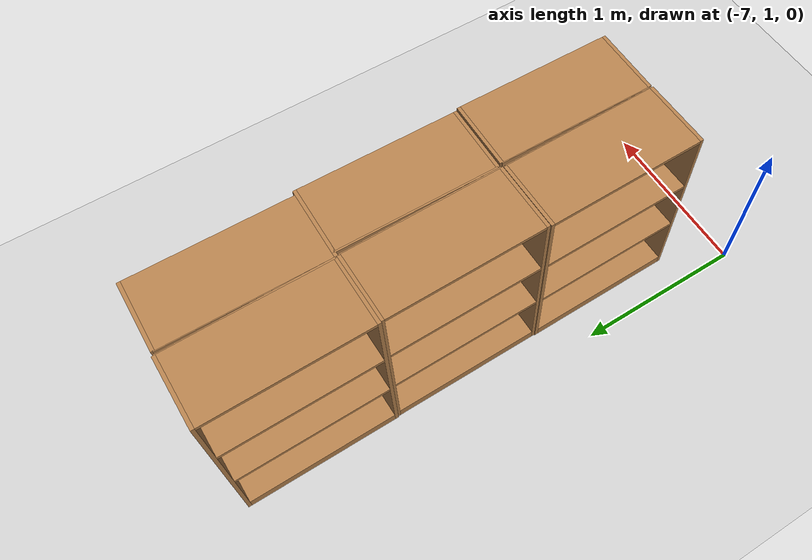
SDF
<sdf version="1.7">
 <world name="default">
  <model name="booookshelf_1">
   <model name="bookshelf">
    <static>1</static>
    <link name="link">
     <inertial><mass>1</mass></inertial>
     <collision name="back">
      <pose>0 0.005 0.6 0 -0 0</pose>
      <geometry><box><size>0.9 0.01 1.2</size></box></geometry>
     </collision>
     <visual name="visual1">
      <pose>0 0.005 0.6 0 -0 0</pose>
      <geometry><box><size>0.9 0.01 1.2</size></box></geometry>
      <material>
       <script><uri>file://media/materials/scripts/gazebo.material</uri><name>Gazebo/Wood</name></script>
      </material>
     </visual>
     <collision name="left_side">
      <pose>0.45 -0.195 0.6 0 -0 0</pose>
      <geometry><box><size>0.02 0.4 1.2</size></box></geometry>
     </collision>
     <visual name="visual2">
      <pose>0.45 -0.195 0.6 0 -0 0</pose>
      <geometry><box><size>0.02 0.4 1.2</size></box></geometry>
      <material>
       <script><uri>file://media/materials/scripts/gazebo.material</uri><name>Gazebo/Wood</name></script>
      </material>
     </visual>
     <collision name="right_side">
      <pose>-0.45 -0.195 0.6 0 -0 0</pose>
      <geometry><box><size>0.02 0.4 1.2</size></box></geometry>
     </collision>
     <visual name="visual3">
      <pose>-0.45 -0.195 0.6 0 -0 0</pose>
      <geometry><box><size>0.02 0.4 1.2</size></box></geometry>
      <material>
       <script><uri>file://media/materials/scripts/gazebo.material</uri><name>Gazebo/Wood</name></script>
      </material>
     </visual>
     <collision name="bottom">
      <pose>0 -0.195 0.03 0 -0 0</pose>
      <geometry><box><size>0.88 0.4 0.06</size></box></geometry>
     </collision>
     <visual name="visual4">
      <pose>0 -0.195 0.03 0 -0 0</pose>
      <geometry><box><size>0.88 0.4 0.06</size></box></geometry>
      <material>
       <script><uri>file://media/materials/scripts/gazebo.material</uri><name>Gazebo/Wood</name></script>
      </material>
     </visual>
     <collision name="top">
      <pose>0 -0.195 1.19 0 -0 0</pose>
      <geometry><box><size>0.88 0.4 0.02</size></box></geometry>
     </collision>
     <visual name="visual5">
      <pose>0 -0.195 1.19 0 -0 0</pose>
      <geometry><box><size>0.88 0.4 0.02</size></box></geometry>
      <material>
       <script><uri>file://media/materials/scripts/gazebo.material</uri><name>Gazebo/Wood</name></script>
      </material>
     </visual>
     <collision name="low_shelf">
      <pose>0 -0.195 0.43 0 -0 0</pose>
      <geometry><box><size>0.88 0.4 0.02</size></box></geometry>
     </collision>
     <visual name="visual6">
      <pose>0 -0.195 0.43 0 -0 0</pose>
      <geometry><box><size>0.88 0.4 0.02</size></box></geometry>
      <material>
       <script><uri>file://media/materials/scripts/gazebo.material</uri><name>Gazebo/Wood</name></script>
      </material>
     </visual>
     <collision name="high_shelf">
      <pose>0 -0.195 0.8 0 -0 0</pose>
      <geometry><box><size>0.88 0.4 0.02</size></box></geometry>
     </collision>
     <visual name="visual7">
      <pose>0 -0.195 0.8 0 -0 0</pose>
      <geometry><box><size>0.88 0.4 0.02</size></box></geometry>
      <material>
       <script><uri>file://media/materials/scripts/gazebo.material</uri><name>Gazebo/Wood</name></script>
      </material>
     </visual>
    </link>
    <pose>-0.009683 0.000159 0 0 0 -1.56493</pose>
   </model>
   <model name="bookshelf_clone">
    <static>1</static>
    <link name="link">
     <inertial><mass>1</mass></inertial>
     <collision name="back">
      <pose>0 0.005 0.6 0 -0 0</pose>
      <geometry><box><size>0.9 0.01 1.2</size></box></geometry>
     </collision>
     <visual name="visual1">
      <pose>0 0.005 0.6 0 -0 0</pose>
      <geometry><box><size>0.9 0.01 1.2</size></box></geometry>
      <material>
       <script><uri>file://media/materials/scripts/gazebo.material</uri><name>Gazebo/Wood</name></script>
      </material>
     </visual>
     <collision name="left_side">
      <pose>0.45 -0.195 0.6 0 -0 0</pose>
      <geometry><box><size>0.02 0.4 1.2</size></box></geometry>
     </collision>
     <visual name="visual2">
      <pose>0.45 -0.195 0.6 0 -0 0</pose>
      <geometry><box><size>0.02 0.4 1.2</size></box></geometry>
      <material>
       <script><uri>file://media/materials/scripts/gazebo.material</uri><name>Gazebo/Wood</name></script>
      </material>
     </visual>
     <collision name="right_side">
      <pose>-0.45 -0.195 0.6 0 -0 0</pose>
      <geometry><box><size>0.02 0.4 1.2</size></box></geometry>
     </collision>
     <visual name="visual3">
      <pose>-0.45 -0.195 0.6 0 -0 0</pose>
      <geometry><box><size>0.02 0.4 1.2</size></box></geometry>
      <material>
       <script><uri>file://media/materials/scripts/gazebo.material</uri><name>Gazebo/Wood</name></script>
      </material>
     </visual>
     <collision name="bottom">
      <pose>0 -0.195 0.03 0 -0 0</pose>
      <geometry><box><size>0.88 0.4 0.06</size></box></geometry>
     </collision>
     <visual name="visual4">
      <pose>0 -0.195 0.03 0 -0 0</pose>
      <geometry><box><size>0.88 0.4 0.06</size></box></geometry>
      <material>
       <script><uri>file://media/materials/scripts/gazebo.material</uri><name>Gazebo/Wood</name></script>
      </material>
     </visual>
     <collision name="top">
      <pose>0 -0.195 1.19 0 -0 0</pose>
      <geometry><box><size>0.88 0.4 0.02</size></box></geometry>
     </collision>
     <visual name="visual5">
      <pose>0 -0.195 1.19 0 -0 0</pose>
      <geometry><box><size>0.88 0.4 0.02</size></box></geometry>
      <material>
       <script><uri>file://media/materials/scripts/gazebo.material</uri><name>Gazebo/Wood</name></script>
      </material>
     </visual>
     <collision name="low_shelf">
      <pose>0 -0.195 0.43 0 -0 0</pose>
      <geometry><box><size>0.88 0.4 0.02</size></box></geometry>
     </collision>
     <visual name="visual6">
      <pose>0 -0.195 0.43 0 -0 0</pose>
      <geometry><box><size>0.88 0.4 0.02</size></box></geometry>
      <material>
       <script><uri>file://media/materials/scripts/gazebo.material</uri><name>Gazebo/Wood</name></script>
      </material>
     </visual>
     <collision name="high_shelf">
      <pose>0 -0.195 0.8 0 -0 0</pose>
      <geometry><box><size>0.88 0.4 0.02</size></box></geometry>
     </collision>
     <visual name="visual7">
      <pose>0 -0.195 0.8 0 -0 0</pose>
      <geometry><box><size>0.88 0.4 0.02</size></box></geometry>
      <material>
       <script><uri>file://media/materials/scripts/gazebo.material</uri><name>Gazebo/Wood</name></script>
      </material>
     </visual>
    </link>
    <pose>-0.008394 -0.921313 0 0 0 -1.56493</pose>
   </model>
   <model name="bookshelf_clone_0">
    <static>1</static>
    <link name="link">
     <inertial><mass>1</mass></inertial>
     <collision name="back">
      <pose>0 0.005 0.6 0 -0 0</pose>
      <geometry><box><size>0.9 0.01 1.2</size></box></geometry>
     </collision>
     <visual name="visual1">
      <pose>0 0.005 0.6 0 -0 0</pose>
      <geometry><box><size>0.9 0.01 1.2</size></box></geometry>
      <material>
       <script><uri>file://media/materials/scripts/gazebo.material</uri><name>Gazebo/Wood</name></script>
      </material>
     </visual>
     <collision name="left_side">
      <pose>0.45 -0.195 0.6 0 -0 0</pose>
      <geometry><box><size>0.02 0.4 1.2</size></box></geometry>
     </collision>
     <visual name="visual2">
      <pose>0.45 -0.195 0.6 0 -0 0</pose>
      <geometry><box><size>0.02 0.4 1.2</size></box></geometry>
      <material>
       <script><uri>file://media/materials/scripts/gazebo.material</uri><name>Gazebo/Wood</name></script>
      </material>
     </visual>
     <collision name="right_side">
      <pose>-0.45 -0.195 0.6 0 -0 0</pose>
      <geometry><box><size>0.02 0.4 1.2</size></box></geometry>
     </collision>
     <visual name="visual3">
      <pose>-0.45 -0.195 0.6 0 -0 0</pose>
      <geometry><box><size>0.02 0.4 1.2</size></box></geometry>
      <material>
       <script><uri>file://media/materials/scripts/gazebo.material</uri><name>Gazebo/Wood</name></script>
      </material>
     </visual>
     <collision name="bottom">
      <pose>0 -0.195 0.03 0 -0 0</pose>
      <geometry><box><size>0.88 0.4 0.06</size></box></geometry>
     </collision>
     <visual name="visual4">
      <pose>0 -0.195 0.03 0 -0 0</pose>
      <geometry><box><size>0.88 0.4 0.06</size></box></geometry>
      <material>
       <script><uri>file://media/materials/scripts/gazebo.material</uri><name>Gazebo/Wood</name></script>
      </material>
     </visual>
     <collision name="top">
      <pose>0 -0.195 1.19 0 -0 0</pose>
      <geometry><box><size>0.88 0.4 0.02</size></box></geometry>
     </collision>
     <visual name="visual5">
      <pose>0 -0.195 1.19 0 -0 0</pose>
      <geometry><box><size>0.88 0.4 0.02</size></box></geometry>
      <material>
       <script><uri>file://media/materials/scripts/gazebo.material</uri><name>Gazebo/Wood</name></script>
      </material>
     </visual>
     <collision name="low_shelf">
      <pose>0 -0.195 0.43 0 -0 0</pose>
      <geometry><box><size>0.88 0.4 0.02</size></box></geometry>
     </collision>
     <visual name="visual6">
      <pose>0 -0.195 0.43 0 -0 0</pose>
      <geometry><box><size>0.88 0.4 0.02</size></box></geometry>
      <material>
       <script><uri>file://media/materials/scripts/gazebo.material</uri><name>Gazebo/Wood</name></script>
      </material>
     </visual>
     <collision name="high_shelf">
      <pose>0 -0.195 0.8 0 -0 0</pose>
      <geometry><box><size>0.88 0.4 0.02</size></box></geometry>
     </collision>
     <visual name="visual7">
      <pose>0 -0.195 0.8 0 -0 0</pose>
      <geometry><box><size>0.88 0.4 0.02</size></box></geometry>
      <material>
       <script><uri>file://media/materials/scripts/gazebo.material</uri><name>Gazebo/Wood</name></script>
      </material>
     </visual>
    </link>
    <pose>-0.020188 0.9173 0 0 0 -1.56493</pose>
   </model>
   <model name="bookshelf_clone_1">
    <static>1</static>
    <link name="link">
     <inertial><mass>1</mass></inertial>
     <collision name="back">
      <pose>0 0.005 0.6 0 -0 0</pose>
      <geometry><box><size>0.9 0.01 1.2</size></box></geometry>
     </collision>
     <visual name="visual1">
      <pose>0 0.005 0.6 0 -0 0</pose>
      <geometry><box><size>0.9 0.01 1.2</size></box></geometry>
      <material>
       <script><uri>file://media/materials/scripts/gazebo.material</uri><name>Gazebo/Wood</name></script>
      </material>
     </visual>
     <collision name="left_side">
      <pose>0.45 -0.195 0.6 0 -0 0</pose>
      <geometry><box><size>0.02 0.4 1.2</size></box></geometry>
     </collision>
     <visual name="visual2">
      <pose>0.45 -0.195 0.6 0 -0 0</pose>
      <geometry><box><size>0.02 0.4 1.2</size></box></geometry>
      <material>
       <script><uri>file://media/materials/scripts/gazebo.material</uri><name>Gazebo/Wood</name></script>
      </material>
     </visual>
     <collision name="right_side">
      <pose>-0.45 -0.195 0.6 0 -0 0</pose>
      <geometry><box><size>0.02 0.4 1.2</size></box></geometry>
     </collision>
     <visual name="visual3">
      <pose>-0.45 -0.195 0.6 0 -0 0</pose>
      <geometry><box><size>0.02 0.4 1.2</size></box></geometry>
      <material>
       <script><uri>file://media/materials/scripts/gazebo.material</uri><name>Gazebo/Wood</name></script>
      </material>
     </visual>
     <collision name="bottom">
      <pose>0 -0.195 0.03 0 -0 0</pose>
      <geometry><box><size>0.88 0.4 0.06</size></box></geometry>
     </collision>
     <visual name="visual4">
      <pose>0 -0.195 0.03 0 -0 0</pose>
      <geometry><box><size>0.88 0.4 0.06</size></box></geometry>
      <material>
       <script><uri>file://media/materials/scripts/gazebo.material</uri><name>Gazebo/Wood</name></script>
      </material>
     </visual>
     <collision name="top">
      <pose>0 -0.195 1.19 0 -0 0</pose>
      <geometry><box><size>0.88 0.4 0.02</size></box></geometry>
     </collision>
     <visual name="visual5">
      <pose>0 -0.195 1.19 0 -0 0</pose>
      <geometry><box><size>0.88 0.4 0.02</size></box></geometry>
      <material>
       <script><uri>file://media/materials/scripts/gazebo.material</uri><name>Gazebo/Wood</name></script>
      </material>
     </visual>
     <collision name="low_shelf">
      <pose>0 -0.195 0.43 0 -0 0</pose>
      <geometry><box><size>0.88 0.4 0.02</size></box></geometry>
     </collision>
     <visual name="visual6">
      <pose>0 -0.195 0.43 0 -0 0</pose>
      <geometry><box><size>0.88 0.4 0.02</size></box></geometry>
      <material>
       <script><uri>file://media/materials/scripts/gazebo.material</uri><name>Gazebo/Wood</name></script>
      </material>
     </visual>
     <collision name="high_shelf">
      <pose>0 -0.195 0.8 0 -0 0</pose>
      <geometry><box><size>0.88 0.4 0.02</size></box></geometry>
     </collision>
     <visual name="visual7">
      <pose>0 -0.195 0.8 0 -0 0</pose>
      <geometry><box><size>0.88 0.4 0.02</size></box></geometry>
      <material>
       <script><uri>file://media/materials/scripts/gazebo.material</uri><name>Gazebo/Wood</name></script>
      </material>
     </visual>
    </link>
    <pose>0.019389 -0.918185 0 0 -0 1.55949</pose>
   </model>
   <model name="bookshelf_clone_1_clone">
    <static>1</static>
    <link name="link">
     <inertial><mass>1</mass></inertial>
     <collision name="back">
      <pose>0 0.005 0.6 0 -0 0</pose>
      <geometry><box><size>0.9 0.01 1.2</size></box></geometry>
     </collision>
     <visual name="visual1">
      <pose>0 0.005 0.6 0 -0 0</pose>
      <geometry><box><size>0.9 0.01 1.2</size></box></geometry>
      <material>
       <script><uri>file://media/materials/scripts/gazebo.material</uri><name>Gazebo/Wood</name></script>
      </material>
     </visual>
     <collision name="left_side">
      <pose>0.45 -0.195 0.6 0 -0 0</pose>
      <geometry><box><size>0.02 0.4 1.2</size></box></geometry>
     </collision>
     <visual name="visual2">
      <pose>0.45 -0.195 0.6 0 -0 0</pose>
      <geometry><box><size>0.02 0.4 1.2</size></box></geometry>
      <material>
       <script><uri>file://media/materials/scripts/gazebo.material</uri><name>Gazebo/Wood</name></script>
      </material>
     </visual>
     <collision name="right_side">
      <pose>-0.45 -0.195 0.6 0 -0 0</pose>
      <geometry><box><size>0.02 0.4 1.2</size></box></geometry>
     </collision>
     <visual name="visual3">
      <pose>-0.45 -0.195 0.6 0 -0 0</pose>
      <geometry><box><size>0.02 0.4 1.2</size></box></geometry>
      <material>
       <script><uri>file://media/materials/scripts/gazebo.material</uri><name>Gazebo/Wood</name></script>
      </material>
     </visual>
     <collision name="bottom">
      <pose>0 -0.195 0.03 0 -0 0</pose>
      <geometry><box><size>0.88 0.4 0.06</size></box></geometry>
     </collision>
     <visual name="visual4">
      <pose>0 -0.195 0.03 0 -0 0</pose>
      <geometry><box><size>0.88 0.4 0.06</size></box></geometry>
      <material>
       <script><uri>file://media/materials/scripts/gazebo.material</uri><name>Gazebo/Wood</name></script>
      </material>
     </visual>
     <collision name="top">
      <pose>0 -0.195 1.19 0 -0 0</pose>
      <geometry><box><size>0.88 0.4 0.02</size></box></geometry>
     </collision>
     <visual name="visual5">
      <pose>0 -0.195 1.19 0 -0 0</pose>
      <geometry><box><size>0.88 0.4 0.02</size></box></geometry>
      <material>
       <script><uri>file://media/materials/scripts/gazebo.material</uri><name>Gazebo/Wood</name></script>
      </material>
     </visual>
     <collision name="low_shelf">
      <pose>0 -0.195 0.43 0 -0 0</pose>
      <geometry><box><size>0.88 0.4 0.02</size></box></geometry>
     </collision>
     <visual name="visual6">
      <pose>0 -0.195 0.43 0 -0 0</pose>
      <geometry><box><size>0.88 0.4 0.02</size></box></geometry>
      <material>
       <script><uri>file://media/materials/scripts/gazebo.material</uri><name>Gazebo/Wood</name></script>
      </material>
     </visual>
     <collision name="high_shelf">
      <pose>0 -0.195 0.8 0 -0 0</pose>
      <geometry><box><size>0.88 0.4 0.02</size></box></geometry>
     </collision>
     <visual name="visual7">
      <pose>0 -0.195 0.8 0 -0 0</pose>
      <geometry><box><size>0.88 0.4 0.02</size></box></geometry>
      <material>
       <script><uri>file://media/materials/scripts/gazebo.material</uri><name>Gazebo/Wood</name></script>
      </material>
     </visual>
    </link>
    <pose>0.016888 0.010932 0 0 -0 1.55949</pose>
   </model>
   <model name="bookshelf_clone_1_clone_0">
    <static>1</static>
    <link name="link">
     <inertial><mass>1</mass></inertial>
     <collision name="back">
      <pose>0 0.005 0.6 0 -0 0</pose>
      <geometry><box><size>0.9 0.01 1.2</size></box></geometry>
     </collision>
     <visual name="visual1">
      <pose>0 0.005 0.6 0 -0 0</pose>
      <geometry><box><size>0.9 0.01 1.2</size></box></geometry>
      <material>
       <script><uri>file://media/materials/scripts/gazebo.material</uri><name>Gazebo/Wood</name></script>
      </material>
     </visual>
     <collision name="left_side">
      <pose>0.45 -0.195 0.6 0 -0 0</pose>
      <geometry><box><size>0.02 0.4 1.2</size></box></geometry>
     </collision>
     <visual name="visual2">
      <pose>0.45 -0.195 0.6 0 -0 0</pose>
      <geometry><box><size>0.02 0.4 1.2</size></box></geometry>
      <material>
       <script><uri>file://media/materials/scripts/gazebo.material</uri><name>Gazebo/Wood</name></script>
      </material>
     </visual>
     <collision name="right_side">
      <pose>-0.45 -0.195 0.6 0 -0 0</pose>
      <geometry><box><size>0.02 0.4 1.2</size></box></geometry>
     </collision>
     <visual name="visual3">
      <pose>-0.45 -0.195 0.6 0 -0 0</pose>
      <geometry><box><size>0.02 0.4 1.2</size></box></geometry>
      <material>
       <script><uri>file://media/materials/scripts/gazebo.material</uri><name>Gazebo/Wood</name></script>
      </material>
     </visual>
     <collision name="bottom">
      <pose>0 -0.195 0.03 0 -0 0</pose>
      <geometry><box><size>0.88 0.4 0.06</size></box></geometry>
     </collision>
     <visual name="visual4">
      <pose>0 -0.195 0.03 0 -0 0</pose>
      <geometry><box><size>0.88 0.4 0.06</size></box></geometry>
      <material>
       <script><uri>file://media/materials/scripts/gazebo.material</uri><name>Gazebo/Wood</name></script>
      </material>
     </visual>
     <collision name="top">
      <pose>0 -0.195 1.19 0 -0 0</pose>
      <geometry><box><size>0.88 0.4 0.02</size></box></geometry>
     </collision>
     <visual name="visual5">
      <pose>0 -0.195 1.19 0 -0 0</pose>
      <geometry><box><size>0.88 0.4 0.02</size></box></geometry>
      <material>
       <script><uri>file://media/materials/scripts/gazebo.material</uri><name>Gazebo/Wood</name></script>
      </material>
     </visual>
     <collision name="low_shelf">
      <pose>0 -0.195 0.43 0 -0 0</pose>
      <geometry><box><size>0.88 0.4 0.02</size></box></geometry>
     </collision>
     <visual name="visual6">
      <pose>0 -0.195 0.43 0 -0 0</pose>
      <geometry><box><size>0.88 0.4 0.02</size></box></geometry>
      <material>
       <script><uri>file://media/materials/scripts/gazebo.material</uri><name>Gazebo/Wood</name></script>
      </material>
     </visual>
     <collision name="high_shelf">
      <pose>0 -0.195 0.8 0 -0 0</pose>
      <geometry><box><size>0.88 0.4 0.02</size></box></geometry>
     </collision>
     <visual name="visual7">
      <pose>0 -0.195 0.8 0 -0 0</pose>
      <geometry><box><size>0.88 0.4 0.02</size></box></geometry>
      <material>
       <script><uri>file://media/materials/scripts/gazebo.material</uri><name>Gazebo/Wood</name></script>
      </material>
     </visual>
    </link>
    <pose>0.001995 0.911101 0 0 -0 1.55949</pose>
   </model>
   <static>0</static>
   <pose>-6.41391 2.73644 0 0 -0 0</pose>
  </model>
  <model name="ground_plane">
   <static>1</static>
   <link name="link">
    <collision name="collision">
     <geometry><plane><normal>0 0 1</normal><size>100 100</size></plane></geometry>
     <surface>
      <contact><collide_bitmask>65535</collide_bitmask></contact>
      <friction><ode><mu>100</mu><mu2>50</mu2></ode></friction>
     </surface>
    </collision>
    <visual name="visual">
     <cast_shadows>0</cast_shadows>
     <geometry><plane><normal>0 0 1</normal><size>100 100</size></plane></geometry>
     <material>
      <script><uri>file://media/materials/scripts/gazebo.material</uri><name>Gazebo/Grey</name></script>
     </material>
    </visual>
   </link>
  </model>
 </world>
</sdf>
